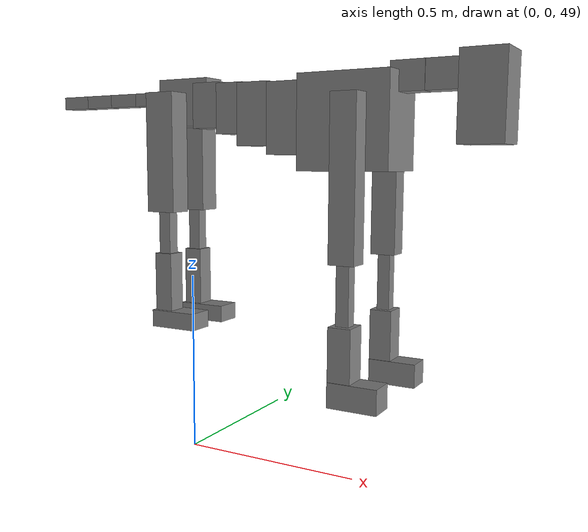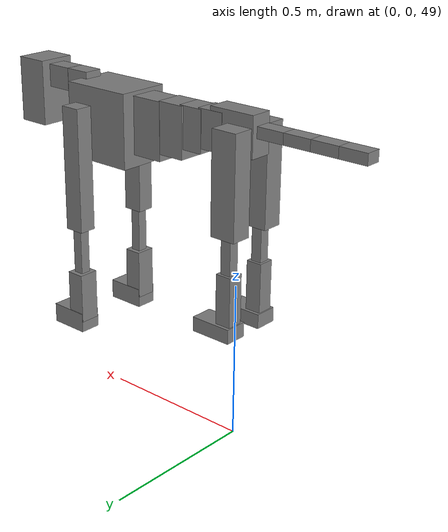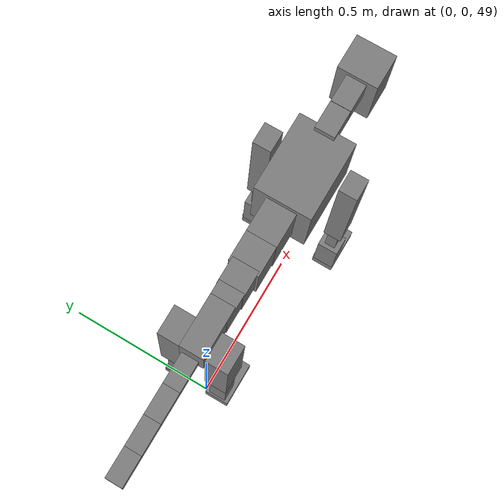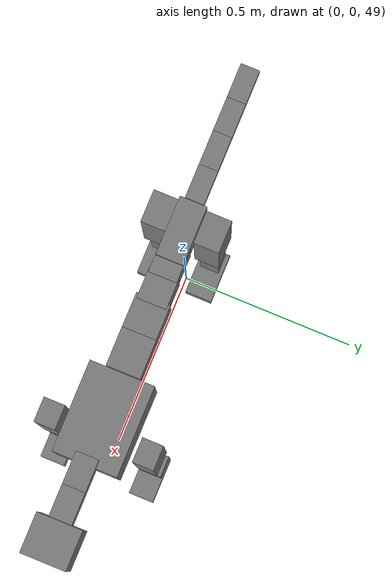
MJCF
<mujoco model="dog">

    <default>
        <joint armature="0.02" stiffness="1" damping="0.2" limited="true"/>
        <geom condim="3" friction="1 0.05 0.05" margin="0.01"/>
        <motor ctrllimited="true" ctrlrange="-1.0 1.0" forcelimited="true" gear="50"/>
    </default>

    <compiler inertiafromgeom="true" angle="radian"/>

    <option timestep="0.016" iterations="50" tolerance="1e-10" solver="Newton" jacobian="dense" cone="pyramidal"/>

    <size nconmax="20000" njmax="60000" nstack="5000000"/>
    <visual>
        <map force="0.1" zfar="30"/>
        <rgba haze="0.15 0.25 0.35 1"/>
        <quality shadowsize="2048"/>
        <global offwidth="800" offheight="800"/>
    </visual>

    <asset>
        <texture type="skybox" builtin="gradient" rgb1="0.3 0.5 0.7" rgb2="0 0 0" width="512" height="512"/>
        <texture name="texplane" type="2d" builtin="checker" rgb1=".2 .3 .4" rgb2=".1 0.15 0.2" width="512" height="512"
                 mark="cross" markrgb=".8 .8 .8"/>
        <texture name="texgeom" type="cube" builtin="flat" mark="cross" width="127" height="1278" rgb1="0.8 0.6 0.4"
                 rgb2="0.8 0.6 0.4" markrgb="1 1 1" random="0.01"/>

        <material name="matplane" reflectance="0.3" texture="texplane" texrepeat="1 1" texuniform="true"/>
        <material name="matgeom" texture="texgeom" texuniform="true" rgba="0.8 0.6 .4 1"/>
    </asset>

    <worldbody>
        <geom name="floor" pos="0 0 0" size="0 0 .25" type="plane" material="matplane" condim="3"/>

        <light directional="false" diffuse=".2 .2 .2" specular="0 0 0" pos="0 0 5" dir="0 0 -1" castshadow="false"/>
        <light mode="targetbodycom" target="torso" directional="false" diffuse=".8 .8 .8" specular="0.3 0.3 0.3"
               pos="0 0 4.0" dir="0 0 -1"/>

        <body name="root" pos="0 0 50">
            <freejoint name="root_1"/>
            <geom type="box" pos="0 0 -0.02" size="0.0774  0.0358  0.063" density="2030"/>

            <body name="spine1" pos="0.054 0 0">
                <joint name="spine1_y" axis="0 1 0" range="0 0.7" limited="true"/>
                <geom type="box" pos="0.02375 0 -0.03" size="0.04375  0.0375  0.05985" density="2030"/>

                <body name="spine2" pos="0.0612 0 0">
                    <joint name="spine2_y" axis="0 1 0" range="-0.15 0.15" limited="true"/>
                    <geom type="box" pos="0.03555  0  -0.04" size="0.04055  0.039  0.06615" density="2030"/>

                    <body name="spine3" pos="0.0730 0 0">
                        <joint name="spine3_y" axis="0 1 0" range="-0.15 0.15" limited="true"/>
                        <geom type="box" pos="0.03555  0  -0.057" size="0.04555  0.0445  0.081" density="2030"/>

                        <body name="spine4" pos="0.0780 0 0">
                            <joint name="spine4_y" axis="0 1 0" range="-0.15 0.15" limited="true"/>
                            <geom type="box" pos="0.05265  0  -0.07" size="0.05265  0.045  0.09135" density="2030"/>

                            <body name="torso" pos="0.1082 0 0">
                                <joint name="torso_y" axis="0 1 0" range="-0.15 0.15" limited="true"/>
                                <geom type="box" pos="0.11925  0  -0.085" size="0.11925  0.085  0.11745"
                                      density="2030"/>

                                <body name="neck1" pos="0.2160  0   0.0180">
                                    <joint name="neck1_y" axis="0 1 0" range="-1.2  -1" limited="true"/>
                                    <geom type="box" pos="0.0423  0  0" size="0.0423  0.03  0.036" density="2325"/>

                                    <body name="neck2" pos="0.0853  0  0">
                                        <joint name="neck2_y" axis="0 1 0" range="0.1  0" limited="true"/>
                                        <geom type="box" pos="0.0423  0  0" size="0.0423  0.03  0.036" density="2325"/>

                                        <body name="head" pos="0.0853  0  0">
                                            <joint name="head_y" axis="0 1 0" range="-0.3  -0.2" limited="true"/>
                                            <geom type="box" pos="0.0531  0  -0.055" size="0.0531  0.06  0.1044"
                                                  density="4030"/>

                                        </body>
                                    </body>
                                </body>

                                <body name="front_shoulder" pos="0.156  0   -0.0480">
                                    <joint name="front_shoulder_y" axis="0 1 0" range="-1 1.5" limited="true"/>
                                    <geom type="box" pos="0 0.13 -0.1718" size="0.0327  0.0279  0.1984" density="1158"/>
                                    <geom type="box" pos="0 -0.13 -0.1718" size="0.0327  0.0279  0.1984"
                                          density="1158"/>

                                    <body name="front_elbow" pos="0  0  -0.3435">
                                        <joint name="front_elbow_y" axis="0 1 0" range="-2 0" limited="true"/>
                                        <geom type="box" pos="0 0.13 -0.0931" size="0.0163  0.0167  0.0931"
                                              density="1081"/>
                                        <geom type="box" pos="0 -0.13 -0.0931" size="0.0163  0.0167  0.0931"
                                              density="1081"/>

                                        <body name="front_wrist" pos="0  0  -0.1862">
                                            <joint name="front_wrist_y" axis="0 1 0" range="-0.2 0" limited="true"/>
                                            <geom type="box" pos="0 0.13 -0.0676" size="0.0291  0.0323  0.0808"
                                                  density="1664"/>
                                            <geom type="box" pos="0 -0.13 -0.0676" size="0.0291  0.0323  0.0808"
                                                  density="1664"/>

                                            <body name="front_finger_end" pos="0  0  -0.1352">
                                                <joint name="front_finger_y" axis="0 1 0" range="-0.4 1"
                                                       limited="true"/>
                                                <geom type="box" pos="0.0345  0.13  -0.0164"
                                                      size="0.0633  0.0345  0.0314" density="1515"/>
                                                <geom type="box" pos="0.0345  -0.13  -0.0164"
                                                      size="0.0633  0.0345  0.0314" density="1515"/>

                                            </body>

                                        </body>
                                    </body>
                                </body>

                            </body>
                        </body>
                    </body>
                </body>
            </body>

            <body name="back_hip" pos="-0.03 0 -0.018">
                <joint name="back_hip_y" axis="0 1 0" range="-1.5 0.3" limited="true"/>
                <geom type="box" pos="0 0.07 -0.1368" size="0.0426  0.0334  0.1596" density="1154"/>
                <geom type="box" pos="0 -0.07 -0.1368" size="0.0426  0.0334  0.1596" density="1154"/>

                <body name="back_knee" pos="0  0  -0.2735">
                    <joint name="back_knee_y" axis="0 1 0" range="0 2.8" limited="true"/>
                    <geom type="box" pos="0 0.07 -0.0738" size="0.0172  0.0169  0.0894" density="1227"/>
                    <geom type="box" pos="0 -0.07 -0.0738" size="0.0172  0.0169  0.0894" density="1227"/>

                    <body name="back_ankle" pos="0  0  -0.1476">
                        <joint name="back_ankle_y" axis="0 1 0" range="-2.2 0" limited="true"/>
                        <geom type="box" pos="0 0.07 -0.0809" size="0.0259  0.0259  0.0921" density="1284"/>
                        <geom type="box" pos="0 -0.07 -0.0809" size="0.0259  0.0259  0.0921" density="1284"/>

                        <body name="back_toe_end" pos="0  0  -0.1618">
                            <joint name="back_toe_y" axis="0 1 0" range="-0.4 1" limited="true"/>
                            <geom type="box" pos="0.0368  0.07  -0.0081" size="0.0675  0.0368  0.0231" density="1515"/>
                            <geom type="box" pos="0.0368  -0.07  -0.0081" size="0.0675  0.0368  0.0231" density="1515"/>

                        </body>
                    </body>
                </body>
            </body>

            <body name="tail1" pos="-0.074 0 -0.006">
                <joint name="tail1_y" axis="0 1 0" range="-0.2 0.2" limited="true"/>
                <geom type="box" pos="-0.0536  0  0" size="0.045  0.025  0.0175" density="1587"/>

                <body name="tail2" pos="-0.09 0 0">
                    <joint name="tail2_y" axis="0 1 0" range="-0.2 0.2" limited="true"/>
                    <geom type="box" pos="-0.0536  0  0" size="0.045  0.025  0.0175" density="1587"/>

                    <body name="tail3" pos="-0.09 0 0">
                        <joint name="tail3_y" axis="0 1 0" range="-0.2 0.2" limited="true"/>
                        <geom type="box" pos="-0.0536  0  0" size="0.045  0.025  0.0175" density="1587"/>

                        <body name="tail4" pos="-0.09 0 0">
                            <joint name="tail4_y" axis="0 1 0" range="-0.2 0.2" limited="true"/>
                            <geom type="box" pos="-0.0536  0  0" size="0.045  0.025  0.0175" density="1587"/>

                        </body>
                    </body>
                </body>
            </body>
        </body>
    </worldbody>

    <actuator>
        <motor joint="spine1_y" forcerange="-150 150     "/>
        <motor joint="spine2_y" forcerange="-150 150     "/>
        <motor joint="spine3_y" forcerange="-150 150     "/>
        <motor joint="spine4_y" forcerange="-150 150     "/>
        <motor joint="torso_y" forcerange="-150 150     "/>
        <motor joint="neck1_y" forcerange="-100 100       "/>
        <motor joint="neck2_y" forcerange="-100 100       "/>
        <motor joint="head_y" forcerange="-150 150       "/>
        <motor joint="front_shoulder_y" forcerange="-173.11 113.06"/>
        <motor joint="front_elbow_y" forcerange="-103.51 118.03"/>
        <motor joint="front_wrist_y" forcerange="-112.68 145.59"/>
        <motor joint="front_finger_y" forcerange="-75.55 68.46"/>
        <motor joint="back_hip_y" forcerange="-366.06 279.26"/>
        <motor joint="back_knee_y" forcerange="-201.56 244.77"/>
        <motor joint="back_angle_y" forcerange="-148.59 166.30"/>
        <motor joint="back_toe_y" forcerange="-126.29 88.41"/>
        <motor joint="tail1_y" forcerange="-50 50     "/>
        <motor joint="tail2_y" forcerange="-50 50     "/>
        <motor joint="tail3_y" forcerange="-50 50     "/>
        <motor joint="tail4_y" forcerange="-50 50     "/>
    </actuator>
</mujoco>
